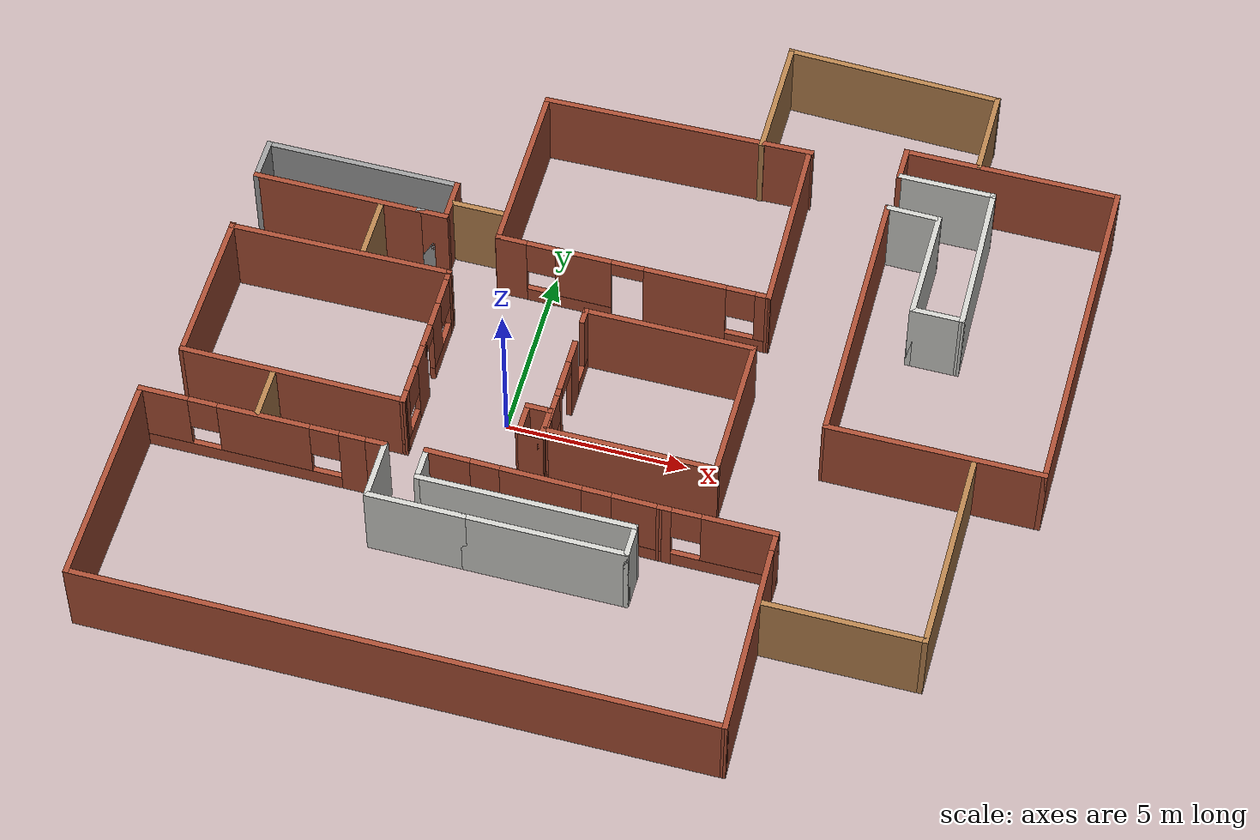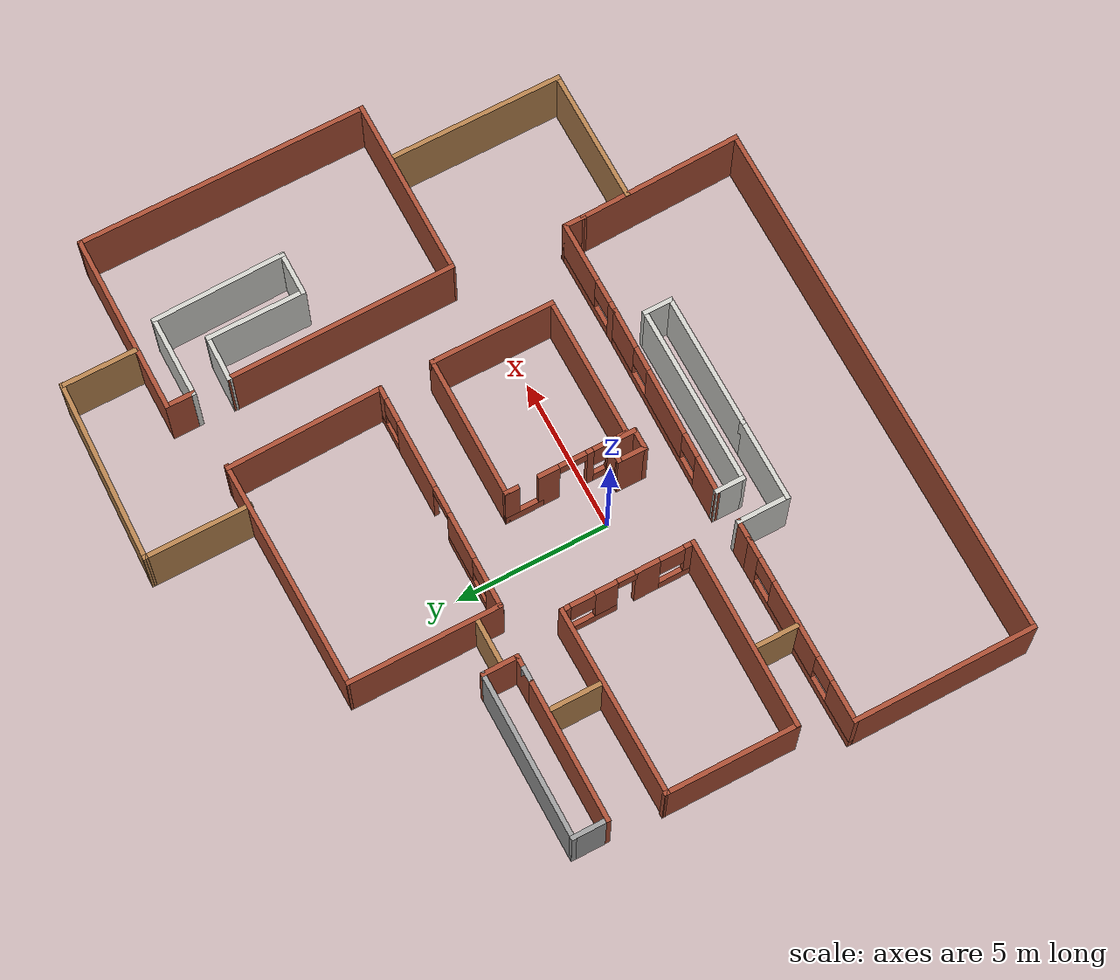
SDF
<sdf version="1.7">
 <model name="COET">
  <pose>2.63838 1.88911 0 0 -0 0</pose>
  <link name="Wall_13">
   <pose>-1.12714 -1.87117 0 0 -0 -1.5708</pose>
   <visual name="Wall_13_Visual_0">
    <pose>-1.15353 0 1.25 0 -0 0</pose>
    <geometry><box><size>0.692937 0.15 2.5</size></box></geometry>
    <material>
     <script><uri>file://media/materials/scripts/gazebo.material</uri><name>Gazebo/Bricks</name></script>
     <ambient>1 1 1 1</ambient>
    </material>
    <meta><layer>0</layer></meta>
   </visual>
   <collision name="Wall_13_Collision_0">
    <geometry><box><size>0.692937 0.15 2.5</size></box></geometry>
    <pose>-1.15353 0 1.25 0 -0 0</pose>
   </collision>
   <visual name="Wall_13_Visual_1">
    <pose>0.2027 0 1.25 0 -0 0</pose>
    <geometry><box><size>0.219527 0.15 2.5</size></box></geometry>
    <material>
     <script><uri>file://media/materials/scripts/gazebo.material</uri><name>Gazebo/Bricks</name></script>
     <ambient>1 1 1 1</ambient>
    </material>
    <meta><layer>0</layer></meta>
   </visual>
   <collision name="Wall_13_Collision_1">
    <geometry><box><size>0.219527 0.15 2.5</size></box></geometry>
    <pose>0.2027 0 1.25 0 -0 0</pose>
   </collision>
   <visual name="Wall_13_Visual_2">
    <pose>0.906232 0 0.25 0 -0 0</pose>
    <geometry><box><size>1.18754 0.15 0.5</size></box></geometry>
    <material>
     <script><uri>file://media/materials/scripts/gazebo.material</uri><name>Gazebo/Bricks</name></script>
     <ambient>1 1 1 1</ambient>
    </material>
    <meta><layer>0</layer></meta>
   </visual>
   <collision name="Wall_13_Collision_2">
    <geometry><box><size>1.18754 0.15 0.5</size></box></geometry>
    <pose>0.906232 0 0.25 0 -0 0</pose>
   </collision>
   <visual name="Wall_13_Visual_3">
    <pose>1.30623 0 1.5 0 -0 0</pose>
    <geometry><box><size>0.387537 0.15 2</size></box></geometry>
    <material>
     <script><uri>file://media/materials/scripts/gazebo.material</uri><name>Gazebo/Bricks</name></script>
     <ambient>1 1 1 1</ambient>
    </material>
    <meta><layer>0</layer></meta>
   </visual>
   <collision name="Wall_13_Collision_3">
    <geometry><box><size>0.387537 0.15 2</size></box></geometry>
    <pose>1.30623 0 1.5 0 -0 0</pose>
   </collision>
   <visual name="Wall_13_Visual_4">
    <pose>0.712463 0 1.9 0 -0 0</pose>
    <geometry><box><size>0.8 0.15 1.2</size></box></geometry>
    <material>
     <script><uri>file://media/materials/scripts/gazebo.material</uri><name>Gazebo/Bricks</name></script>
     <ambient>1 1 1 1</ambient>
    </material>
    <meta><layer>0</layer></meta>
   </visual>
   <collision name="Wall_13_Collision_4">
    <geometry><box><size>0.8 0.15 1.2</size></box></geometry>
    <pose>0.712463 0 1.9 0 -0 0</pose>
   </collision>
   <visual name="Wall_13_Visual_5">
    <pose>-0.357063 0 2.25 0 -0 0</pose>
    <geometry><box><size>0.9 0.15 0.5</size></box></geometry>
    <material>
     <script><uri>file://media/materials/scripts/gazebo.material</uri><name>Gazebo/Bricks</name></script>
     <ambient>1 1 1 1</ambient>
    </material>
    <meta><layer>0</layer></meta>
   </visual>
   <collision name="Wall_13_Collision_5">
    <geometry><box><size>0.9 0.15 0.5</size></box></geometry>
    <pose>-0.357063 0 2.25 0 -0 0</pose>
   </collision>
  </link>
  <link name="Wall_16">
   <pose>-8.68589 -4.82629 0 0 -0 3.14159</pose>
   <visual name="Wall_16_Visual_0">
    <pose>-2.76371 0 1.25 0 -0 0</pose>
    <geometry><box><size>0.722576 0.15 2.5</size></box></geometry>
    <material>
     <script><uri>file://media/materials/scripts/gazebo.material</uri><name>Gazebo/Bricks</name></script>
     <ambient>1 1 1 1</ambient>
    </material>
    <meta><layer>0</layer></meta>
   </visual>
   <collision name="Wall_16_Collision_0">
    <geometry><box><size>0.722576 0.15 2.5</size></box></geometry>
    <pose>-2.76371 0 1.25 0 -0 0</pose>
   </collision>
   <visual name="Wall_16_Visual_1">
    <pose>0.361288 0 0.25 0 -0 0</pose>
    <geometry><box><size>5.52742 0.15 0.5</size></box></geometry>
    <material>
     <script><uri>file://media/materials/scripts/gazebo.material</uri><name>Gazebo/Bricks</name></script>
     <ambient>1 1 1 1</ambient>
    </material>
    <meta><layer>0</layer></meta>
   </visual>
   <collision name="Wall_16_Collision_1">
    <geometry><box><size>5.52742 0.15 0.5</size></box></geometry>
    <pose>0.361288 0 0.25 0 -0 0</pose>
   </collision>
   <visual name="Wall_16_Visual_2">
    <pose>-0.334475 0 1.5 0 -0 0</pose>
    <geometry><box><size>2.5359 0.15 2</size></box></geometry>
    <material>
     <script><uri>file://media/materials/scripts/gazebo.material</uri><name>Gazebo/Bricks</name></script>
     <ambient>1 1 1 1</ambient>
    </material>
    <meta><layer>0</layer></meta>
   </visual>
   <collision name="Wall_16_Collision_2">
    <geometry><box><size>2.5359 0.15 2</size></box></geometry>
    <pose>-0.334475 0 1.5 0 -0 0</pose>
   </collision>
   <visual name="Wall_16_Visual_3">
    <pose>2.42924 0 1.5 0 -0 0</pose>
    <geometry><box><size>1.39152 0.15 2</size></box></geometry>
    <material>
     <script><uri>file://media/materials/scripts/gazebo.material</uri><name>Gazebo/Bricks</name></script>
     <ambient>1 1 1 1</ambient>
    </material>
    <meta><layer>0</layer></meta>
   </visual>
   <collision name="Wall_16_Collision_3">
    <geometry><box><size>1.39152 0.15 2</size></box></geometry>
    <pose>2.42924 0 1.5 0 -0 0</pose>
   </collision>
   <visual name="Wall_16_Visual_4">
    <pose>-2.00242 0 1.9 0 -0 0</pose>
    <geometry><box><size>0.8 0.15 1.2</size></box></geometry>
    <material>
     <script><uri>file://media/materials/scripts/gazebo.material</uri><name>Gazebo/Bricks</name></script>
     <ambient>1 1 1 1</ambient>
    </material>
    <meta><layer>0</layer></meta>
   </visual>
   <collision name="Wall_16_Collision_4">
    <geometry><box><size>0.8 0.15 1.2</size></box></geometry>
    <pose>-2.00242 0 1.9 0 -0 0</pose>
   </collision>
   <visual name="Wall_16_Visual_5">
    <pose>1.33347 0 1.9 0 -0 0</pose>
    <geometry><box><size>0.8 0.15 1.2</size></box></geometry>
    <material>
     <script><uri>file://media/materials/scripts/gazebo.material</uri><name>Gazebo/Bricks</name></script>
     <ambient>1 1 1 1</ambient>
    </material>
    <meta><layer>0</layer></meta>
   </visual>
   <collision name="Wall_16_Collision_5">
    <geometry><box><size>0.8 0.15 1.2</size></box></geometry>
    <pose>1.33347 0 1.9 0 -0 0</pose>
   </collision>
  </link>
  <link name="Wall_20">
   <collision name="Wall_20_Collision">
    <geometry><box><size>6.23871 0.15 2.5</size></box></geometry>
    <pose>0 0 1.25 0 -0 0</pose>
   </collision>
   <visual name="Wall_20_Visual">
    <pose>0 0 1.25 0 -0 0</pose>
    <geometry><box><size>6.23871 0.15 2.5</size></box></geometry>
    <material>
     <script><uri>file://media/materials/scripts/gazebo.material</uri><name>Gazebo/Bricks</name></script>
     <ambient>1 1 1 1</ambient>
    </material>
    <meta><layer>0</layer></meta>
   </visual>
   <pose>-8.02431 -3.35626 0 0 -0 3.13488</pose>
  </link>
  <link name="Wall_21">
   <collision name="Wall_21_Collision">
    <geometry><box><size>4.36693 0.15 2.5</size></box></geometry>
    <pose>0 0 1.25 0 -0 0</pose>
   </collision>
   <visual name="Wall_21_Visual">
    <pose>0 0 1.25 0 -0 0</pose>
    <geometry><box><size>4.36693 0.15 2.5</size></box></geometry>
    <material>
     <script><uri>file://media/materials/scripts/gazebo.material</uri><name>Gazebo/Bricks</name></script>
     <ambient>1 1 1 1</ambient>
    </material>
    <meta><layer>0</layer></meta>
   </visual>
   <pose>-11.0762 -1.22738 0 0 -0 1.56719</pose>
  </link>
  <link name="Wall_22">
   <collision name="Wall_22_Collision">
    <geometry><box><size>6.22366 0.15 2.5</size></box></geometry>
    <pose>0 0 1.25 0 -0 0</pose>
   </collision>
   <visual name="Wall_22_Visual">
    <pose>0 0 1.25 0 -0 0</pose>
    <geometry><box><size>6.22366 0.15 2.5</size></box></geometry>
    <material>
     <script><uri>file://media/materials/scripts/gazebo.material</uri><name>Gazebo/Bricks</name></script>
     <ambient>1 1 1 1</ambient>
    </material>
    <meta><layer>0</layer></meta>
   </visual>
   <pose>-8.03191 0.881067 0 0 -0 0.010016</pose>
  </link>
  <link name="Wall_23">
   <pose>-4.98763 -0.307601 0 0 -0 -1.56448</pose>
   <visual name="Wall_23_Visual_0">
    <pose>-1.1175 0 1.25 0 -0 0</pose>
    <geometry><box><size>0.322802 0.15 2.5</size></box></geometry>
    <material>
     <script><uri>file://media/materials/scripts/gazebo.material</uri><name>Gazebo/Bricks</name></script>
     <ambient>1 1 1 1</ambient>
    </material>
    <meta><layer>0</layer></meta>
   </visual>
   <collision name="Wall_23_Collision_0">
    <geometry><box><size>0.322802 0.15 2.5</size></box></geometry>
    <pose>-1.1175 0 1.25 0 -0 0</pose>
   </collision>
   <visual name="Wall_23_Visual_1">
    <pose>-0.188082 0 0.25 0 -0 0</pose>
    <geometry><box><size>1.53604 0.15 0.5</size></box></geometry>
    <material>
     <script><uri>file://media/materials/scripts/gazebo.material</uri><name>Gazebo/Bricks</name></script>
     <ambient>1 1 1 1</ambient>
    </material>
    <meta><layer>0</layer></meta>
   </visual>
   <collision name="Wall_23_Collision_1">
    <geometry><box><size>1.53604 0.15 0.5</size></box></geometry>
    <pose>-0.188082 0 0.25 0 -0 0</pose>
   </collision>
   <visual name="Wall_23_Visual_2">
    <pose>0.211918 0 1.5 0 -0 0</pose>
    <geometry><box><size>0.736035 0.15 2</size></box></geometry>
    <material>
     <script><uri>file://media/materials/scripts/gazebo.material</uri><name>Gazebo/Bricks</name></script>
     <ambient>1 1 1 1</ambient>
    </material>
    <meta><layer>0</layer></meta>
   </visual>
   <collision name="Wall_23_Collision_2">
    <geometry><box><size>0.736035 0.15 2</size></box></geometry>
    <pose>0.211918 0 1.5 0 -0 0</pose>
   </collision>
   <visual name="Wall_23_Visual_3">
    <pose>-0.556099 0 1.9 0 -0 0</pose>
    <geometry><box><size>0.8 0.15 1.2</size></box></geometry>
    <material>
     <script><uri>file://media/materials/scripts/gazebo.material</uri><name>Gazebo/Bricks</name></script>
     <ambient>1 1 1 1</ambient>
    </material>
    <meta><layer>0</layer></meta>
   </visual>
   <collision name="Wall_23_Collision_3">
    <geometry><box><size>0.8 0.15 1.2</size></box></geometry>
    <pose>-0.556099 0 1.9 0 -0 0</pose>
   </collision>
   <visual name="Wall_23_Visual_4">
    <pose>0.929418 0 2.25 0 -0 0</pose>
    <geometry><box><size>0.698965 0.15 0.5</size></box></geometry>
    <material>
     <script><uri>file://media/materials/scripts/gazebo.material</uri><name>Gazebo/Bricks</name></script>
     <ambient>1 1 1 1</ambient>
    </material>
    <meta><layer>0</layer></meta>
   </visual>
   <collision name="Wall_23_Collision_4">
    <geometry><box><size>0.698965 0.15 0.5</size></box></geometry>
    <pose>0.929418 0 2.25 0 -0 0</pose>
   </collision>
  </link>
  <link name="Wall_25">
   <pose>-1.12714 0.103831 0 0 -0 1.5708</pose>
   <visual name="Wall_25_Visual_0">
    <pose>0 0 0.25 0 -0 0</pose>
    <geometry><box><size>1.25 0.15 0.5</size></box></geometry>
    <material>
     <script><uri>file://media/materials/scripts/gazebo.material</uri><name>Gazebo/Bricks</name></script>
     <ambient>1 1 1 1</ambient>
    </material>
    <meta><layer>0</layer></meta>
   </visual>
   <collision name="Wall_25_Collision_0">
    <geometry><box><size>1.25 0.15 0.5</size></box></geometry>
    <pose>0 0 0.25 0 -0 0</pose>
   </collision>
   <visual name="Wall_25_Visual_1">
    <pose>0.379332 0 1.5 0 -0 0</pose>
    <geometry><box><size>0.491337 0.15 2</size></box></geometry>
    <material>
     <script><uri>file://media/materials/scripts/gazebo.material</uri><name>Gazebo/Bricks</name></script>
     <ambient>1 1 1 1</ambient>
    </material>
    <meta><layer>0</layer></meta>
   </visual>
   <collision name="Wall_25_Collision_1">
    <geometry><box><size>0.491337 0.15 2</size></box></geometry>
    <pose>0.379332 0 1.5 0 -0 0</pose>
   </collision>
  </link>
  <link name="Wall_26">
   <collision name="Wall_26_Collision">
    <geometry><box><size>4.75 0.15 2.5</size></box></geometry>
    <pose>0 0 1.25 0 -0 0</pose>
   </collision>
   <visual name="Wall_26_Visual">
    <pose>0 0 1.25 0 -0 0</pose>
    <geometry><box><size>4.75 0.15 2.5</size></box></geometry>
    <material>
     <script><uri>file://media/materials/scripts/gazebo.material</uri><name>Gazebo/Bricks</name></script>
     <ambient>1 1 1 1</ambient>
    </material>
    <meta><layer>0</layer></meta>
   </visual>
   <pose>1.17286 0.653831 0 0 -0 0</pose>
  </link>
  <link name="Wall_27">
   <collision name="Wall_27_Collision">
    <geometry><box><size>4.1 0.15 2.5</size></box></geometry>
    <pose>0 0 1.25 0 -0 0</pose>
   </collision>
   <visual name="Wall_27_Visual">
    <pose>0 0 1.25 0 -0 0</pose>
    <geometry><box><size>4.1 0.15 2.5</size></box></geometry>
    <material>
     <script><uri>file://media/materials/scripts/gazebo.material</uri><name>Gazebo/Bricks</name></script>
     <ambient>1 1 1 1</ambient>
    </material>
    <meta><layer>0</layer></meta>
   </visual>
   <pose>3.47286 -1.32117 0 0 -0 -1.5708</pose>
  </link>
  <link name="Wall_28">
   <collision name="Wall_28_Collision">
    <geometry><box><size>4.75 0.15 2.5</size></box></geometry>
    <pose>0 0 1.25 0 -0 0</pose>
   </collision>
   <visual name="Wall_28_Visual">
    <pose>0 0 1.25 0 -0 0</pose>
    <geometry><box><size>4.75 0.15 2.5</size></box></geometry>
    <material>
     <script><uri>file://media/materials/scripts/gazebo.material</uri><name>Gazebo/Bricks</name></script>
     <ambient>1 1 1 1</ambient>
    </material>
    <meta><layer>0</layer></meta>
   </visual>
   <pose>1.17286 -3.29617 0 0 -0 3.14159</pose>
  </link>
  <link name="Wall_30">
   <pose>3.91411 -4.82629 0 0 -0 0</pose>
   <visual name="Wall_30_Visual_0">
    <pose>-1.42801 0 1.25 0 -0 0</pose>
    <geometry><box><size>0.393971 0.15 2.5</size></box></geometry>
    <material>
     <script><uri>file://media/materials/scripts/gazebo.material</uri><name>Gazebo/Bricks</name></script>
     <ambient>1 1 1 1</ambient>
    </material>
    <meta><layer>0</layer></meta>
   </visual>
   <collision name="Wall_30_Collision_0">
    <geometry><box><size>0.393971 0.15 2.5</size></box></geometry>
    <pose>-1.42801 0 1.25 0 -0 0</pose>
   </collision>
   <visual name="Wall_30_Visual_1">
    <pose>0.196986 0 0.25 0 -0 0</pose>
    <geometry><box><size>2.85603 0.15 0.5</size></box></geometry>
    <material>
     <script><uri>file://media/materials/scripts/gazebo.material</uri><name>Gazebo/Bricks</name></script>
     <ambient>1 1 1 1</ambient>
    </material>
    <meta><layer>0</layer></meta>
   </visual>
   <collision name="Wall_30_Collision_1">
    <geometry><box><size>2.85603 0.15 0.5</size></box></geometry>
    <pose>0.196986 0 0.25 0 -0 0</pose>
   </collision>
   <visual name="Wall_30_Visual_2">
    <pose>0.596986 0 1.5 0 -0 0</pose>
    <geometry><box><size>2.05603 0.15 2</size></box></geometry>
    <material>
     <script><uri>file://media/materials/scripts/gazebo.material</uri><name>Gazebo/Bricks</name></script>
     <ambient>1 1 1 1</ambient>
    </material>
    <meta><layer>0</layer></meta>
   </visual>
   <collision name="Wall_30_Collision_2">
    <geometry><box><size>2.05603 0.15 2</size></box></geometry>
    <pose>0.596986 0 1.5 0 -0 0</pose>
   </collision>
   <visual name="Wall_30_Visual_3">
    <pose>-0.831029 0 1.9 0 -0 0</pose>
    <geometry><box><size>0.8 0.15 1.2</size></box></geometry>
    <material>
     <script><uri>file://media/materials/scripts/gazebo.material</uri><name>Gazebo/Bricks</name></script>
     <ambient>1 1 1 1</ambient>
    </material>
    <meta><layer>0</layer></meta>
   </visual>
   <collision name="Wall_30_Collision_3">
    <geometry><box><size>0.8 0.15 1.2</size></box></geometry>
    <pose>-0.831029 0 1.9 0 -0 0</pose>
   </collision>
  </link>
  <link name="Wall_31">
   <collision name="Wall_31_Collision">
    <geometry><box><size>0.75 0.15 2.5</size></box></geometry>
    <pose>0 0 1.25 0 -0 0</pose>
   </collision>
   <visual name="Wall_31_Visual">
    <pose>0 0 1.25 0 -0 0</pose>
    <geometry><box><size>0.75 0.15 2.5</size></box></geometry>
    <material>
     <script><uri>file://media/materials/scripts/gazebo.material</uri><name>Gazebo/Bricks</name></script>
     <ambient>1 1 1 1</ambient>
    </material>
    <meta><layer>0</layer></meta>
   </visual>
   <pose>5.46411 -5.12629 0 0 -0 -1.5708</pose>
  </link>
  <link name="Wall_33">
   <collision name="Wall_33_Collision">
    <geometry><box><size>1 0.15 2.5</size></box></geometry>
    <pose>0 0 1.25 0 -0 0</pose>
   </collision>
   <visual name="Wall_33_Visual">
    <pose>0 0 1.25 0 -0 0</pose>
    <geometry><box><size>1 0.15 2.5</size></box></geometry>
    <material>
     <script><uri>file://media/materials/scripts/gazebo.material</uri><name>Gazebo/Bricks</name></script>
     <ambient>1 1 1 1</ambient>
    </material>
    <meta><layer>0</layer></meta>
   </visual>
   <pose>-1.78112 -3.10855 0 0 -0 1.5708</pose>
  </link>
  <link name="Wall_34">
   <collision name="Wall_34_Collision">
    <geometry><box><size>0.75 0.15 2.5</size></box></geometry>
    <pose>0 0 1.25 0 -0 0</pose>
   </collision>
   <visual name="Wall_34_Visual">
    <pose>0 0 1.25 0 -0 0</pose>
    <geometry><box><size>0.75 0.15 2.5</size></box></geometry>
    <material>
     <script><uri>file://media/materials/scripts/gazebo.material</uri><name>Gazebo/Bricks</name></script>
     <ambient>1 1 1 1</ambient>
    </material>
    <meta><layer>0</layer></meta>
   </visual>
   <pose>-1.48112 -2.68355 0 0 -0 0</pose>
  </link>
  <link name="Wall_35">
   <collision name="Wall_35_Collision">
    <geometry><box><size>1 0.15 2.5</size></box></geometry>
    <pose>0 0 1.25 0 -0 0</pose>
   </collision>
   <visual name="Wall_35_Visual">
    <pose>0 0 1.25 0 -0 0</pose>
    <geometry><box><size>1 0.15 2.5</size></box></geometry>
    <material>
     <script><uri>file://media/materials/scripts/gazebo.material</uri><name>Gazebo/Bricks</name></script>
     <ambient>1 1 1 1</ambient>
    </material>
    <meta><layer>0</layer></meta>
   </visual>
   <pose>-1.18112 -3.10855 0 0 -0 -1.5708</pose>
  </link>
  <link name="Wall_36">
   <collision name="Wall_36_Collision">
    <geometry><box><size>0.75 0.15 2.5</size></box></geometry>
    <pose>0 0 1.25 0 -0 0</pose>
   </collision>
   <visual name="Wall_36_Visual">
    <pose>0 0 1.25 0 -0 0</pose>
    <geometry><box><size>0.75 0.15 2.5</size></box></geometry>
    <material>
     <script><uri>file://media/materials/scripts/gazebo.material</uri><name>Gazebo/Bricks</name></script>
     <ambient>1 1 1 1</ambient>
    </material>
    <meta><layer>0</layer></meta>
   </visual>
   <pose>-1.48112 -3.53355 0 0 -0 3.14159</pose>
  </link>
  <link name="Wall_40">
   <pose>-0.307768 2.38032 0 0 -0 -0.001794</pose>
   <visual name="Wall_40_Visual_0">
    <pose>-3.37487 0 1.25 0 -0 0</pose>
    <geometry><box><size>0.863813 0.15 2.5</size></box></geometry>
    <material>
     <script><uri>file://media/materials/scripts/gazebo.material</uri><name>Gazebo/Bricks</name></script>
     <ambient>1 1 1 1</ambient>
    </material>
    <meta><layer>0</layer></meta>
   </visual>
   <collision name="Wall_40_Collision_0">
    <geometry><box><size>0.863813 0.15 2.5</size></box></geometry>
    <pose>-3.37487 0 1.25 0 -0 0</pose>
   </collision>
   <visual name="Wall_40_Visual_1">
    <pose>1.45377 0 1.25 0 -0 0</pose>
    <geometry><box><size>2.27979 0.15 2.5</size></box></geometry>
    <material>
     <script><uri>file://media/materials/scripts/gazebo.material</uri><name>Gazebo/Bricks</name></script>
     <ambient>1 1 1 1</ambient>
    </material>
    <meta><layer>0</layer></meta>
   </visual>
   <collision name="Wall_40_Collision_1">
    <geometry><box><size>2.27979 0.15 2.5</size></box></geometry>
    <pose>1.45377 0 1.25 0 -0 0</pose>
   </collision>
   <visual name="Wall_40_Visual_2">
    <pose>-1.76454 0 0.25 0 -0 0</pose>
    <geometry><box><size>2.35685 0.15 0.5</size></box></geometry>
    <material>
     <script><uri>file://media/materials/scripts/gazebo.material</uri><name>Gazebo/Bricks</name></script>
     <ambient>1 1 1 1</ambient>
    </material>
    <meta><layer>0</layer></meta>
   </visual>
   <collision name="Wall_40_Collision_2">
    <geometry><box><size>2.35685 0.15 0.5</size></box></geometry>
    <pose>-1.76454 0 0.25 0 -0 0</pose>
   </collision>
   <visual name="Wall_40_Visual_3">
    <pose>3.20022 0 0.25 0 -0 0</pose>
    <geometry><box><size>1.21311 0.15 0.5</size></box></geometry>
    <material>
     <script><uri>file://media/materials/scripts/gazebo.material</uri><name>Gazebo/Bricks</name></script>
     <ambient>1 1 1 1</ambient>
    </material>
    <meta><layer>0</layer></meta>
   </visual>
   <collision name="Wall_40_Collision_3">
    <geometry><box><size>1.21311 0.15 0.5</size></box></geometry>
    <pose>3.20022 0 0.25 0 -0 0</pose>
   </collision>
   <visual name="Wall_40_Visual_4">
    <pose>-1.36454 0 1.5 0 -0 0</pose>
    <geometry><box><size>1.55685 0.15 2</size></box></geometry>
    <material>
     <script><uri>file://media/materials/scripts/gazebo.material</uri><name>Gazebo/Bricks</name></script>
     <ambient>1 1 1 1</ambient>
    </material>
    <meta><layer>0</layer></meta>
   </visual>
   <collision name="Wall_40_Collision_4">
    <geometry><box><size>1.55685 0.15 2</size></box></geometry>
    <pose>-1.36454 0 1.5 0 -0 0</pose>
   </collision>
   <visual name="Wall_40_Visual_5">
    <pose>-1.36454 0 1.5 0 -0 0</pose>
    <geometry><box><size>1.55685 0.15 2</size></box></geometry>
    <material>
     <script><uri>file://media/materials/scripts/gazebo.material</uri><name>Gazebo/Bricks</name></script>
     <ambient>1 1 1 1</ambient>
    </material>
    <meta><layer>0</layer></meta>
   </visual>
   <collision name="Wall_40_Collision_5">
    <geometry><box><size>1.55685 0.15 2</size></box></geometry>
    <pose>-1.36454 0 1.5 0 -0 0</pose>
   </collision>
   <visual name="Wall_40_Visual_6">
    <pose>3.60022 0 1.5 0 -0 0</pose>
    <geometry><box><size>0.413112 0.15 2</size></box></geometry>
    <material>
     <script><uri>file://media/materials/scripts/gazebo.material</uri><name>Gazebo/Bricks</name></script>
     <ambient>1 1 1 1</ambient>
    </material>
    <meta><layer>0</layer></meta>
   </visual>
   <collision name="Wall_40_Collision_6">
    <geometry><box><size>0.413112 0.15 2</size></box></geometry>
    <pose>3.60022 0 1.5 0 -0 0</pose>
   </collision>
   <visual name="Wall_40_Visual_7">
    <pose>-2.54297 0 1.9 0 -0 0</pose>
    <geometry><box><size>0.8 0.15 1.2</size></box></geometry>
    <material>
     <script><uri>file://media/materials/scripts/gazebo.material</uri><name>Gazebo/Bricks</name></script>
     <ambient>1 1 1 1</ambient>
    </material>
    <meta><layer>0</layer></meta>
   </visual>
   <collision name="Wall_40_Collision_7">
    <geometry><box><size>0.8 0.15 1.2</size></box></geometry>
    <pose>-2.54297 0 1.9 0 -0 0</pose>
   </collision>
   <visual name="Wall_40_Visual_8">
    <pose>2.99367 0 1.9 0 -0 0</pose>
    <geometry><box><size>0.8 0.15 1.2</size></box></geometry>
    <material>
     <script><uri>file://media/materials/scripts/gazebo.material</uri><name>Gazebo/Bricks</name></script>
     <ambient>1 1 1 1</ambient>
    </material>
    <meta><layer>0</layer></meta>
   </visual>
   <collision name="Wall_40_Collision_8">
    <geometry><box><size>0.8 0.15 1.2</size></box></geometry>
    <pose>2.99367 0 1.9 0 -0 0</pose>
   </collision>
   <visual name="Wall_40_Visual_9">
    <pose>-0.136119 0 2.25 0 -0 0</pose>
    <geometry><box><size>0.9 0.15 0.5</size></box></geometry>
    <material>
     <script><uri>file://media/materials/scripts/gazebo.material</uri><name>Gazebo/Bricks</name></script>
     <ambient>1 1 1 1</ambient>
    </material>
    <meta><layer>0</layer></meta>
   </visual>
   <collision name="Wall_40_Collision_9">
    <geometry><box><size>0.9 0.15 0.5</size></box></geometry>
    <pose>-0.136119 0 2.25 0 -0 0</pose>
   </collision>
   <visual name="Wall_40_Visual_10">
    <pose>-0.136119 0 2.25 0 -0 0</pose>
    <geometry><box><size>0.9 0.15 0.5</size></box></geometry>
    <material>
     <script><uri>file://media/materials/scripts/gazebo.material</uri><name>Gazebo/Bricks</name></script>
     <ambient>1 1 1 1</ambient>
    </material>
    <meta><layer>0</layer></meta>
   </visual>
   <collision name="Wall_40_Collision_10">
    <geometry><box><size>0.9 0.15 0.5</size></box></geometry>
    <pose>-0.136119 0 2.25 0 -0 0</pose>
   </collision>
  </link>
  <link name="Wall_41">
   <collision name="Wall_41_Collision">
    <geometry><box><size>5.15795 0.15 2.5</size></box></geometry>
    <pose>0 0 1.25 0 -0 0</pose>
   </collision>
   <visual name="Wall_41_Visual">
    <pose>0 0 1.25 0 -0 0</pose>
    <geometry><box><size>5.15795 0.15 2.5</size></box></geometry>
    <material>
     <script><uri>file://media/materials/scripts/gazebo.material</uri><name>Gazebo/Bricks</name></script>
     <ambient>0.760784 0.662745 0.627451 1</ambient>
    </material>
    <meta><layer>0</layer></meta>
   </visual>
   <pose>3.39056 4.87688 0 0 -0 1.59478</pose>
  </link>
  <link name="Wall_42">
   <collision name="Wall_42_Collision">
    <geometry><box><size>7.57466 0.15 2.5</size></box></geometry>
    <pose>0 0 1.25 0 -0 0</pose>
   </collision>
   <visual name="Wall_42_Visual">
    <pose>0 0 1.25 0 -0 0</pose>
    <geometry><box><size>7.57466 0.15 2.5</size></box></geometry>
    <material>
     <script><uri>file://media/materials/scripts/gazebo.material</uri><name>Gazebo/Bricks</name></script>
     <ambient>1 1 1 1</ambient>
    </material>
    <meta><layer>0</layer></meta>
   </visual>
   <pose>-0.334445 7.31187 0 0 -0 -3.12321</pose>
  </link>
  <link name="Wall_43">
   <collision name="Wall_43_Collision">
    <geometry><box><size>5 0.15 2.5</size></box></geometry>
    <pose>0 0 1.25 0 -0 0</pose>
   </collision>
   <visual name="Wall_43_Visual">
    <pose>0 0 1.25 0 -0 0</pose>
    <geometry><box><size>5 0.15 2.5</size></box></geometry>
    <material>
     <script><uri>file://media/materials/scripts/gazebo.material</uri><name>Gazebo/Bricks</name></script>
     <ambient>1 1 1 1</ambient>
    </material>
    <meta><layer>0</layer></meta>
   </visual>
   <pose>-4.04615 4.81862 0 0 -0 -1.5708</pose>
  </link>
  <link name="Wall_47">
   <collision name="Wall_47_Collision">
    <geometry><box><size>7.50685 0.15 2.5</size></box></geometry>
    <pose>0 0 1.25 0 -0 0</pose>
   </collision>
   <visual name="Wall_47_Visual">
    <pose>0 0 1.25 0 -0 0</pose>
    <geometry><box><size>7.50685 0.15 2.5</size></box></geometry>
    <material>
     <script><uri>file://media/materials/scripts/gazebo.material</uri><name>Gazebo/Bricks</name></script>
     <ambient>1 1 1 1</ambient>
    </material>
    <meta><layer>0</layer></meta>
   </visual>
   <pose>5.85246 2.42244 0 0 -0 -1.56171</pose>
  </link>
  <link name="Wall_48">
   <collision name="Wall_48_Collision">
    <geometry><box><size>6 0.15 2.5</size></box></geometry>
    <pose>0 0 1.25 0 -0 0</pose>
   </collision>
   <visual name="Wall_48_Visual">
    <pose>0 0 1.25 0 -0 0</pose>
    <geometry><box><size>6 0.15 2.5</size></box></geometry>
    <material>
     <script><uri>file://media/materials/scripts/gazebo.material</uri><name>Gazebo/Bricks</name></script>
     <ambient>1 1 1 1</ambient>
    </material>
    <meta><layer>0</layer></meta>
   </visual>
   <pose>8.81089 -1.25583 0 0 -0 0</pose>
  </link>
  <link name="Wall_49">
   <collision name="Wall_49_Collision">
    <geometry><box><size>9.5 0.15 2.5</size></box></geometry>
    <pose>0 0 1.25 0 -0 0</pose>
   </collision>
   <visual name="Wall_49_Visual">
    <pose>0 0 1.25 0 -0 0</pose>
    <geometry><box><size>9.5 0.15 2.5</size></box></geometry>
    <material>
     <script><uri>file://media/materials/scripts/gazebo.material</uri><name>Gazebo/Bricks</name></script>
     <ambient>1 1 1 1</ambient>
    </material>
    <meta><layer>0</layer></meta>
   </visual>
   <pose>11.7359 3.41917 0 0 -0 1.5708</pose>
  </link>
  <link name="Wall_50">
   <collision name="Wall_50_Collision">
    <geometry><box><size>6 0.15 2.5</size></box></geometry>
    <pose>0 0 1.25 0 -0 0</pose>
   </collision>
   <visual name="Wall_50_Visual">
    <pose>0 0 1.25 0 -0 0</pose>
    <geometry><box><size>6 0.15 2.5</size></box></geometry>
    <material>
     <script><uri>file://media/materials/scripts/gazebo.material</uri><name>Gazebo/Bricks</name></script>
     <ambient>1 1 1 1</ambient>
    </material>
    <meta><layer>0</layer></meta>
   </visual>
   <pose>8.81089 8.09417 0 0 -0 3.14159</pose>
  </link>
  <link name="Wall_57">
   <collision name="Wall_57_Collision">
    <geometry><box><size>1.5671 0.15 2.5</size></box></geometry>
    <pose>0 0 1.25 0 -0 0</pose>
   </collision>
   <visual name="Wall_57_Visual">
    <pose>0 0 1.25 0 -0 0</pose>
    <geometry><box><size>1.5671 0.15 2.5</size></box></geometry>
    <material>
     <script><uri>file://media/materials/scripts/gazebo.material</uri><name>Gazebo/CeilingTiled</name></script>
     <ambient>1 1 1 1</ambient>
    </material>
    <meta><layer>0</layer></meta>
   </visual>
   <pose>6.52746 6.1058 0 0 -0 -0.016412</pose>
  </link>
  <link name="Wall_58">
   <collision name="Wall_58_Collision">
    <geometry><box><size>3.25 0.15 2.5</size></box></geometry>
    <pose>0 0 1.25 0 -0 0</pose>
   </collision>
   <visual name="Wall_58_Visual">
    <pose>0 0 1.25 0 -0 0</pose>
    <geometry><box><size>3.25 0.15 2.5</size></box></geometry>
    <material>
     <script><uri>file://media/materials/scripts/gazebo.material</uri><name>Gazebo/CeilingTiled</name></script>
     <ambient>1 1 1 1</ambient>
    </material>
    <meta><layer>0</layer></meta>
   </visual>
   <pose>7.23589 4.54417 0 0 -0 -1.5708</pose>
  </link>
  <link name="Wall_59">
   <collision name="Wall_59_Collision">
    <geometry><box><size>1.5 0.15 2.5</size></box></geometry>
    <pose>0 0 1.25 0 -0 0</pose>
   </collision>
   <visual name="Wall_59_Visual">
    <pose>0 0 1.25 0 -0 0</pose>
    <geometry><box><size>1.5 0.15 2.5</size></box></geometry>
    <material>
     <script><uri>file://media/materials/scripts/gazebo.material</uri><name>Gazebo/CeilingTiled</name></script>
     <ambient>0.996078 0.47451 0.0196078 1</ambient>
    </material>
    <meta><layer>0</layer></meta>
   </visual>
   <pose>7.91089 2.99417 0 0 -0 0</pose>
  </link>
  <link name="Wall_60">
   <collision name="Wall_60_Collision">
    <geometry><box><size>4.40118 0.15 2.5</size></box></geometry>
    <pose>0 0 1.25 0 -0 0</pose>
   </collision>
   <visual name="Wall_60_Visual">
    <pose>0 0 1.25 0 -0 0</pose>
    <geometry><box><size>4.40118 0.15 2.5</size></box></geometry>
    <material>
     <script><uri>file://media/materials/scripts/gazebo.material</uri><name>Gazebo/CeilingTiled</name></script>
     <ambient>1 1 1 1</ambient>
    </material>
    <meta><layer>0</layer></meta>
   </visual>
   <pose>8.53589 5.11917 0 0 -0 1.59432</pose>
  </link>
  <link name="Wall_61">
   <collision name="Wall_61_Collision">
    <geometry><box><size>2.75 0.15 2.5</size></box></geometry>
    <pose>0 0 1.25 0 -0 0</pose>
   </collision>
   <visual name="Wall_61_Visual">
    <pose>0 0 1.25 0 -0 0</pose>
    <geometry><box><size>2.75 0.15 2.5</size></box></geometry>
    <material>
     <script><uri>file://media/materials/scripts/gazebo.material</uri><name>Gazebo/CeilingTiled</name></script>
     <ambient>1 1 1 1</ambient>
    </material>
    <meta><layer>0</layer></meta>
   </visual>
   <pose>7.18589 7.24417 0 0 -0 3.14159</pose>
  </link>
  <link name="Wall_62">
   <collision name="Wall_62_Collision">
    <geometry><box><size>1 0.15 2.5</size></box></geometry>
    <pose>0 0 1.25 0 -0 0</pose>
   </collision>
   <visual name="Wall_62_Visual">
    <pose>0 0 1.25 0 -0 0</pose>
    <geometry><box><size>1 0.15 2.5</size></box></geometry>
    <material>
     <script><uri>file://media/materials/scripts/gazebo.material</uri><name>Gazebo/Bricks</name></script>
     <ambient>1 1 1 1</ambient>
    </material>
    <meta><layer>0</layer></meta>
   </visual>
   <pose>5.88589 7.66917 0 0 -0 1.5708</pose>
  </link>
  <link name="Wall_64">
   <collision name="Wall_64_Collision">
    <geometry><box><size>0.75 0.15 2.5</size></box></geometry>
    <pose>0 0 1.25 0 -0 0</pose>
   </collision>
   <visual name="Wall_64_Visual">
    <pose>0 0 1.25 0 -0 0</pose>
    <geometry><box><size>0.75 0.15 2.5</size></box></geometry>
    <material>
     <script><uri>file://media/materials/scripts/gazebo.material</uri><name>Gazebo/Bricks</name></script>
     <ambient>1 1 1 1</ambient>
    </material>
    <meta><layer>0</layer></meta>
   </visual>
   <pose>-5.33589 -4.82629 0 0 -0 0</pose>
  </link>
  <link name="Wall_65">
   <collision name="Wall_65_Collision">
    <geometry><box><size>1.75 0.15 2.5</size></box></geometry>
    <pose>0 0 1.25 0 -0 0</pose>
   </collision>
   <visual name="Wall_65_Visual">
    <pose>0 0 1.25 0 -0 0</pose>
    <geometry><box><size>1.75 0.15 2.5</size></box></geometry>
    <material>
     <script><uri>file://media/materials/scripts/gazebo.material</uri><name>Gazebo/CeilingTiled</name></script>
     <ambient>1 1 1 1</ambient>
    </material>
    <meta><layer>0</layer></meta>
   </visual>
   <pose>-5.03589 -5.62629 0 0 -0 -1.5708</pose>
  </link>
  <link name="Wall_66">
   <collision name="Wall_66_Collision">
    <geometry><box><size>2.75 0.15 2.5</size></box></geometry>
    <pose>0 0 1.25 0 -0 0</pose>
   </collision>
   <visual name="Wall_66_Visual">
    <pose>0 0 1.25 0 -0 0</pose>
    <geometry><box><size>2.75 0.15 2.5</size></box></geometry>
    <material>
     <script><uri>file://media/materials/scripts/gazebo.material</uri><name>Gazebo/CeilingTiled</name></script>
     <ambient>1 1 1 1</ambient>
    </material>
    <meta><layer>0</layer></meta>
   </visual>
   <pose>-3.73589 -6.42629 0 0 -0 0</pose>
  </link>
  <link name="Wall_67">
   <collision name="Wall_67_Collision">
    <geometry><box><size>4.5 0.15 2.5</size></box></geometry>
    <pose>0 0 1.25 0 -0 0</pose>
   </collision>
   <visual name="Wall_67_Visual">
    <pose>0 0 1.25 0 -0 0</pose>
    <geometry><box><size>4.5 0.15 2.5</size></box></geometry>
    <material>
     <script><uri>file://media/materials/scripts/gazebo.material</uri><name>Gazebo/CeilingTiled</name></script>
     <ambient>1 1 1 1</ambient>
    </material>
    <meta><layer>0</layer></meta>
   </visual>
   <pose>-0.260888 -6.42629 0 0 -0 0</pose>
  </link>
  <link name="Wall_68">
   <collision name="Wall_68_Collision">
    <geometry><box><size>1 0.15 2.5</size></box></geometry>
    <pose>0 0 1.25 0 -0 0</pose>
   </collision>
   <visual name="Wall_68_Visual">
    <pose>0 0 1.25 0 -0 0</pose>
    <geometry><box><size>1 0.15 2.5</size></box></geometry>
    <material>
     <script><uri>file://media/materials/scripts/gazebo.material</uri><name>Gazebo/CeilingTiled</name></script>
     <ambient>0.435294 0.796078 0.67451 1</ambient>
    </material>
    <meta><layer>0</layer></meta>
   </visual>
   <pose>1.91411 -6.00129 0 0 -0 1.5708</pose>
  </link>
  <link name="Wall_69">
   <collision name="Wall_69_Collision">
    <geometry><box><size>6 0.15 2.5</size></box></geometry>
    <pose>0 0 1.25 0 -0 0</pose>
   </collision>
   <visual name="Wall_69_Visual">
    <pose>0 0 1.25 0 -0 0</pose>
    <geometry><box><size>6 0.15 2.5</size></box></geometry>
    <material>
     <script><uri>file://media/materials/scripts/gazebo.material</uri><name>Gazebo/CeilingTiled</name></script>
     <ambient>1 1 1 1</ambient>
    </material>
    <meta><layer>0</layer></meta>
   </visual>
   <pose>-1.01089 -5.57629 0 0 -0 3.14159</pose>
  </link>
  <link name="Wall_70">
   <collision name="Wall_70_Collision">
    <geometry><box><size>1 0.15 2.5</size></box></geometry>
    <pose>0 0 1.25 0 -0 0</pose>
   </collision>
   <visual name="Wall_70_Visual">
    <pose>0 0 1.25 0 -0 0</pose>
    <geometry><box><size>1 0.15 2.5</size></box></geometry>
    <material>
     <script><uri>file://media/materials/scripts/gazebo.material</uri><name>Gazebo/CeilingTiled</name></script>
     <ambient>1 1 1 1</ambient>
    </material>
    <meta><layer>0</layer></meta>
   </visual>
   <pose>-3.93589 -5.15129 0 0 -0 1.5708</pose>
  </link>
  <link name="Wall_71">
   <pose>-0.785888 -4.77629 0 0 -0 -0.015872</pose>
   <visual name="Wall_71_Visual_0">
    <pose>-2.5924 0 1.25 0 -0 0</pose>
    <geometry><box><size>1.26599 0.15 2.5</size></box></geometry>
    <material>
     <script><uri>file://media/materials/scripts/gazebo.material</uri><name>Gazebo/Bricks</name></script>
     <ambient>1 1 1 1</ambient>
    </material>
    <meta><layer>0</layer></meta>
   </visual>
   <collision name="Wall_71_Collision_0">
    <geometry><box><size>1.26599 0.15 2.5</size></box></geometry>
    <pose>-2.5924 0 1.25 0 -0 0</pose>
   </collision>
   <visual name="Wall_71_Visual_1">
    <pose>0.632993 0 0.25 0 -0 0</pose>
    <geometry><box><size>5.18481 0.15 0.5</size></box></geometry>
    <material>
     <script><uri>file://media/materials/scripts/gazebo.material</uri><name>Gazebo/Bricks</name></script>
     <ambient>1 1 1 1</ambient>
    </material>
    <meta><layer>0</layer></meta>
   </visual>
   <collision name="Wall_71_Collision_1">
    <geometry><box><size>5.18481 0.15 0.5</size></box></geometry>
    <pose>0.632993 0 0.25 0 -0 0</pose>
   </collision>
   <visual name="Wall_71_Visual_2">
    <pose>-0.049228 0 1.5 0 -0 0</pose>
    <geometry><box><size>2.22037 0.15 2</size></box></geometry>
    <material>
     <script><uri>file://media/materials/scripts/gazebo.material</uri><name>Gazebo/Bricks</name></script>
     <ambient>1 1 1 1</ambient>
    </material>
    <meta><layer>0</layer></meta>
   </visual>
   <collision name="Wall_71_Collision_2">
    <geometry><box><size>2.22037 0.15 2</size></box></geometry>
    <pose>-0.049228 0 1.5 0 -0 0</pose>
   </collision>
   <visual name="Wall_71_Visual_3">
    <pose>2.54318 0 1.5 0 -0 0</pose>
    <geometry><box><size>1.36444 0.15 2</size></box></geometry>
    <material>
     <script><uri>file://media/materials/scripts/gazebo.material</uri><name>Gazebo/Bricks</name></script>
     <ambient>1 1 1 1</ambient>
    </material>
    <meta><layer>0</layer></meta>
   </visual>
   <collision name="Wall_71_Collision_3">
    <geometry><box><size>1.36444 0.15 2</size></box></geometry>
    <pose>2.54318 0 1.5 0 -0 0</pose>
   </collision>
   <visual name="Wall_71_Visual_4">
    <pose>-1.55941 0 1.9 0 -0 0</pose>
    <geometry><box><size>0.8 0.15 1.2</size></box></geometry>
    <material>
     <script><uri>file://media/materials/scripts/gazebo.material</uri><name>Gazebo/Bricks</name></script>
     <ambient>1 1 1 1</ambient>
    </material>
    <meta><layer>0</layer></meta>
   </visual>
   <collision name="Wall_71_Collision_4">
    <geometry><box><size>0.8 0.15 1.2</size></box></geometry>
    <pose>-1.55941 0 1.9 0 -0 0</pose>
   </collision>
   <visual name="Wall_71_Visual_5">
    <pose>1.46096 0 1.9 0 -0 0</pose>
    <geometry><box><size>0.8 0.15 1.2</size></box></geometry>
    <material>
     <script><uri>file://media/materials/scripts/gazebo.material</uri><name>Gazebo/Bricks</name></script>
     <ambient>1 1 1 1</ambient>
    </material>
    <meta><layer>0</layer></meta>
   </visual>
   <collision name="Wall_71_Collision_5">
    <geometry><box><size>0.8 0.15 1.2</size></box></geometry>
    <pose>1.46096 0 1.9 0 -0 0</pose>
   </collision>
  </link>
  <link name="Wall_73">
   <collision name="Wall_73_Collision">
    <geometry><box><size>4.75 0.15 2.5</size></box></geometry>
    <pose>0 0 1.25 0 -0 0</pose>
   </collision>
   <visual name="Wall_73_Visual">
    <pose>0 0 1.25 0 -0 0</pose>
    <geometry><box><size>4.75 0.15 2.5</size></box></geometry>
    <material>
     <script><uri>file://media/materials/scripts/gazebo.material</uri><name>Gazebo/Bricks</name></script>
     <ambient>1 1 1 1</ambient>
    </material>
    <meta><layer>0</layer></meta>
   </visual>
   <pose>-8.66294 2.66817 0 0 -0 3.14159</pose>
  </link>
  <link name="Wall_74">
   <collision name="Wall_74_Collision">
    <geometry><box><size>1.25 0.15 2.5</size></box></geometry>
    <pose>0 0 1.25 0 -0 0</pose>
   </collision>
   <visual name="Wall_74_Visual">
    <pose>0 0 1.25 0 -0 0</pose>
    <geometry><box><size>1.25 0.15 2.5</size></box></geometry>
    <material>
     <script><uri>file://media/materials/scripts/gazebo.material</uri><name>Gazebo/Grey</name></script>
     <ambient>1 1 1 1</ambient>
    </material>
    <meta><layer>0</layer></meta>
   </visual>
   <pose>-10.9629 3.21817 0 0 -0 1.5708</pose>
  </link>
  <link name="Wall_75">
   <collision name="Wall_75_Collision">
    <geometry><box><size>5.5 0.15 2.5</size></box></geometry>
    <pose>0 0 1.25 0 -0 0</pose>
   </collision>
   <visual name="Wall_75_Visual">
    <pose>0 0 1.25 0 -0 0</pose>
    <geometry><box><size>5.5 0.15 2.5</size></box></geometry>
    <material>
     <script><uri>file://media/materials/scripts/gazebo.material</uri><name>Gazebo/Grey</name></script>
     <ambient>1 1 1 1</ambient>
    </material>
    <meta><layer>0</layer></meta>
   </visual>
   <pose>-8.28794 3.76817 0 0 -0 0</pose>
  </link>
  <link name="Wall_76">
   <collision name="Wall_76_Collision">
    <geometry><box><size>1.25 0.15 2.5</size></box></geometry>
    <pose>0 0 1.25 0 -0 0</pose>
   </collision>
   <visual name="Wall_76_Visual">
    <pose>0 0 1.25 0 -0 0</pose>
    <geometry><box><size>1.25 0.15 2.5</size></box></geometry>
    <material>
     <script><uri>file://media/materials/scripts/gazebo.material</uri><name>Gazebo/Bricks</name></script>
     <ambient>1 1 1 1</ambient>
    </material>
    <meta><layer>0</layer></meta>
   </visual>
   <pose>-5.61294 3.21817 0 0 -0 -1.5708</pose>
  </link>
  <link name="Wall_77">
   <collision name="Wall_77_Collision">
    <geometry><box><size>0.9 0.15 2.5</size></box></geometry>
    <pose>0 0 1.25 0 -0 0</pose>
   </collision>
   <visual name="Wall_77_Visual">
    <pose>0 0 1.25 0 -0 0</pose>
    <geometry><box><size>0.9 0.15 2.5</size></box></geometry>
    <material>
     <script><uri>file://media/materials/scripts/gazebo.material</uri><name>Gazebo/Bricks</name></script>
     <ambient>1 1 1 1</ambient>
    </material>
    <meta><layer>0</layer></meta>
   </visual>
   <pose>-5.98794 2.66817 0 0 -0 3.14159</pose>
  </link>
  <link name="Wall_78">
   <collision name="Wall_78_Collision">
    <geometry><box><size>0.5 0.15 2.5</size></box></geometry>
    <pose>0 0 1.25 0 -0 0</pose>
   </collision>
   <visual name="Wall_78_Visual">
    <pose>0 0 1.25 0 -0 0</pose>
    <geometry><box><size>0.5 0.15 2.5</size></box></geometry>
    <material>
     <script><uri>file://media/materials/scripts/gazebo.material</uri><name>Gazebo/Grey</name></script>
     <ambient>1 1 1 1</ambient>
    </material>
    <meta><layer>0</layer></meta>
   </visual>
   <pose>-6.18794 2.66817 0 0 -0 0</pose>
  </link>
  <link name="Wall_80">
   <collision name="Wall_80_Collision">
    <geometry><box><size>1.5 0.15 2.5</size></box></geometry>
    <pose>0 0 1.25 0 -0 0</pose>
   </collision>
   <visual name="Wall_80_Visual">
    <pose>0 0 1.25 0 -0 0</pose>
    <geometry><box><size>1.5 0.15 2.5</size></box></geometry>
    <material>
     <script><uri>file://media/materials/scripts/gazebo.material</uri><name>Gazebo/Wood</name></script>
     <ambient>1 1 1 1</ambient>
    </material>
    <meta><layer>0</layer></meta>
   </visual>
   <pose>-4.87275 3.16263 0 0 -0 0</pose>
  </link>
  <link name="Wall_82">
   <collision name="Wall_82_Collision">
    <geometry><box><size>6 0.15 2.5</size></box></geometry>
    <pose>0 0 1.25 0 -0 0</pose>
   </collision>
   <visual name="Wall_82_Visual">
    <pose>0 0 1.25 0 -0 0</pose>
    <geometry><box><size>6 0.15 2.5</size></box></geometry>
    <material>
     <script><uri>file://media/materials/scripts/gazebo.material</uri><name>Gazebo/Bricks</name></script>
     <ambient>1 1 1 1</ambient>
    </material>
    <meta><layer>0</layer></meta>
   </visual>
   <pose>-11.7359 -7.75129 0 0 -0 -1.5708</pose>
  </link>
  <link name="Wall_83">
   <collision name="Wall_83_Collision">
    <geometry><box><size>17.5 0.15 2.5</size></box></geometry>
    <pose>0 0 1.25 0 -0 0</pose>
   </collision>
   <visual name="Wall_83_Visual">
    <pose>0 0 1.25 0 -0 0</pose>
    <geometry><box><size>17.5 0.15 2.5</size></box></geometry>
    <material>
     <script><uri>file://media/materials/scripts/gazebo.material</uri><name>Gazebo/Bricks</name></script>
     <ambient>1 1 1 1</ambient>
    </material>
    <meta><layer>0</layer></meta>
   </visual>
   <pose>-3.06089 -10.6763 0 0 -0 0</pose>
  </link>
  <link name="Wall_84">
   <collision name="Wall_84_Collision">
    <geometry><box><size>5.40214 0.15 2.5</size></box></geometry>
    <pose>0 0 1.25 0 -0 0</pose>
   </collision>
   <visual name="Wall_84_Visual">
    <pose>0 0 1.25 0 -0 0</pose>
    <geometry><box><size>5.40214 0.15 2.5</size></box></geometry>
    <material>
     <script><uri>file://media/materials/scripts/gazebo.material</uri><name>Gazebo/Bricks</name></script>
     <ambient>1 1 1 1</ambient>
    </material>
    <meta><layer>0</layer></meta>
   </visual>
   <pose>5.53911 -8.05129 0 0 -0 1.59936</pose>
  </link>
  <link name="Wall_86">
   <collision name="Wall_86_Collision">
    <geometry><box><size>1.5 0.15 2.5</size></box></geometry>
    <pose>0 0 1.25 0 -0 0</pose>
   </collision>
   <visual name="Wall_86_Visual">
    <pose>0 0 1.25 0 -0 0</pose>
    <geometry><box><size>1.5 0.15 2.5</size></box></geometry>
    <material>
     <script><uri>file://media/materials/scripts/gazebo.material</uri><name>Gazebo/Wood</name></script>
     <ambient>1 1 1 1</ambient>
    </material>
    <meta><layer>0</layer></meta>
   </visual>
   <pose>-8.53487 -4.0767 0 0 -0 -1.5708</pose>
  </link>
  <link name="Wall_88">
   <collision name="Wall_88_Collision">
    <geometry><box><size>1.75 0.15 2.5</size></box></geometry>
    <pose>0 0 1.25 0 -0 0</pose>
   </collision>
   <visual name="Wall_88_Visual">
    <pose>0 0 1.25 0 -0 0</pose>
    <geometry><box><size>1.75 0.15 2.5</size></box></geometry>
    <material>
     <script><uri>file://media/materials/scripts/gazebo.material</uri><name>Gazebo/Wood</name></script>
     <ambient>1 1 1 1</ambient>
    </material>
    <meta><layer>0</layer></meta>
   </visual>
   <pose>-7.4165 1.80189 0 0 -0 1.5708</pose>
  </link>
  <link name="Wall_9">
   <pose>-4.98002 -2.45169 0 0 -0 -1.5708</pose>
   <visual name="Wall_9_Visual_0">
    <pose>-0.592891 0 1.25 0 -0 0</pose>
    <geometry><box><size>0.814217 0.15 2.5</size></box></geometry>
    <material>
     <script><uri>file://media/materials/scripts/gazebo.material</uri><name>Gazebo/Bricks</name></script>
     <ambient>1 1 1 1</ambient>
    </material>
    <meta><layer>0</layer></meta>
   </visual>
   <collision name="Wall_9_Collision_0">
    <geometry><box><size>0.814217 0.15 2.5</size></box></geometry>
    <pose>-0.592891 0 1.25 0 -0 0</pose>
   </collision>
   <visual name="Wall_9_Visual_1">
    <pose>0.407109 0 0.25 0 -0 0</pose>
    <geometry><box><size>1.18578 0.15 0.5</size></box></geometry>
    <material>
     <script><uri>file://media/materials/scripts/gazebo.material</uri><name>Gazebo/Bricks</name></script>
     <ambient>1 1 1 1</ambient>
    </material>
    <meta><layer>0</layer></meta>
   </visual>
   <collision name="Wall_9_Collision_1">
    <geometry><box><size>1.18578 0.15 0.5</size></box></geometry>
    <pose>0.407109 0 0.25 0 -0 0</pose>
   </collision>
   <visual name="Wall_9_Visual_2">
    <pose>0.807109 0 1.5 0 -0 0</pose>
    <geometry><box><size>0.385783 0.15 2</size></box></geometry>
    <material>
     <script><uri>file://media/materials/scripts/gazebo.material</uri><name>Gazebo/Bricks</name></script>
     <ambient>1 1 1 1</ambient>
    </material>
    <meta><layer>0</layer></meta>
   </visual>
   <collision name="Wall_9_Collision_2">
    <geometry><box><size>0.385783 0.15 2</size></box></geometry>
    <pose>0.807109 0 1.5 0 -0 0</pose>
   </collision>
   <visual name="Wall_9_Visual_3">
    <pose>0.214217 0 1.9 0 -0 0</pose>
    <geometry><box><size>0.8 0.15 1.2</size></box></geometry>
    <material>
     <script><uri>file://media/materials/scripts/gazebo.material</uri><name>Gazebo/Bricks</name></script>
     <ambient>1 1 1 1</ambient>
    </material>
    <meta><layer>0</layer></meta>
   </visual>
   <collision name="Wall_9_Collision_3">
    <geometry><box><size>0.8 0.15 1.2</size></box></geometry>
    <pose>0.214217 0 1.9 0 -0 0</pose>
   </collision>
  </link>
  <link name="Wall_91">
   <collision name="Wall_91_Collision">
    <geometry><box><size>4.5 0.15 2.5</size></box></geometry>
    <pose>0 0 1.25 0 -0 0</pose>
   </collision>
   <visual name="Wall_91_Visual">
    <pose>0 0 1.25 0 -0 0</pose>
    <geometry><box><size>4.5 0.15 2.5</size></box></geometry>
    <material>
     <script><uri>file://media/materials/scripts/gazebo.material</uri><name>Gazebo/Wood</name></script>
     <ambient>1 1 1 1</ambient>
    </material>
    <meta><layer>0</layer></meta>
   </visual>
   <pose>7.69445 -6.9311 0 0 -0 0</pose>
  </link>
  <link name="Wall_92">
   <collision name="Wall_92_Collision">
    <geometry><box><size>5.75 0.15 2.5</size></box></geometry>
    <pose>0 0 1.25 0 -0 0</pose>
   </collision>
   <visual name="Wall_92_Visual">
    <pose>0 0 1.25 0 -0 0</pose>
    <geometry><box><size>5.75 0.15 2.5</size></box></geometry>
    <material>
     <script><uri>file://media/materials/scripts/gazebo.material</uri><name>Gazebo/Wood</name></script>
     <ambient>1 1 1 1</ambient>
    </material>
    <meta><layer>0</layer></meta>
   </visual>
   <pose>9.86945 -4.1311 0 0 -0 1.5708</pose>
  </link>
  <link name="Wall_94">
   <collision name="Wall_94_Collision">
    <geometry><box><size>3.5 0.15 2.5</size></box></geometry>
    <pose>0 0 1.25 0 -0 0</pose>
   </collision>
   <visual name="Wall_94_Visual">
    <pose>0 0 1.25 0 -0 0</pose>
    <geometry><box><size>3.5 0.15 2.5</size></box></geometry>
    <material>
     <script><uri>file://media/materials/scripts/gazebo.material</uri><name>Gazebo/Wood</name></script>
     <ambient>1 1 1 1</ambient>
    </material>
    <meta><layer>0</layer></meta>
   </visual>
   <pose>2.01742 9.00115 0 0 -0 1.5708</pose>
  </link>
  <link name="Wall_95">
   <collision name="Wall_95_Collision">
    <geometry><box><size>6.03108 0.15 2.5</size></box></geometry>
    <pose>0 0 1.25 0 -0 0</pose>
   </collision>
   <visual name="Wall_95_Visual">
    <pose>0 0 1.25 0 -0 0</pose>
    <geometry><box><size>6.03108 0.15 2.5</size></box></geometry>
    <material>
     <script><uri>file://media/materials/scripts/gazebo.material</uri><name>Gazebo/Wood</name></script>
     <ambient>1 1 1 1</ambient>
    </material>
    <meta><layer>0</layer></meta>
   </visual>
   <pose>4.95659 10.5864 0 0 -0 -0.030527</pose>
  </link>
  <link name="Wall_96">
   <collision name="Wall_96_Collision">
    <geometry><box><size>2.5 0.15 2.5</size></box></geometry>
    <pose>0 0 1.25 0 -0 0</pose>
   </collision>
   <visual name="Wall_96_Visual">
    <pose>0 0 1.25 0 -0 0</pose>
    <geometry><box><size>2.5 0.15 2.5</size></box></geometry>
    <material>
     <script><uri>file://media/materials/scripts/gazebo.material</uri><name>Gazebo/Wood</name></script>
     <ambient>1 1 1 1</ambient>
    </material>
    <meta><layer>0</layer></meta>
   </visual>
   <pose>7.88631 9.32165 0 0 -0 -1.5708</pose>
  </link>
  <static>1</static>
 </model>
</sdf>
